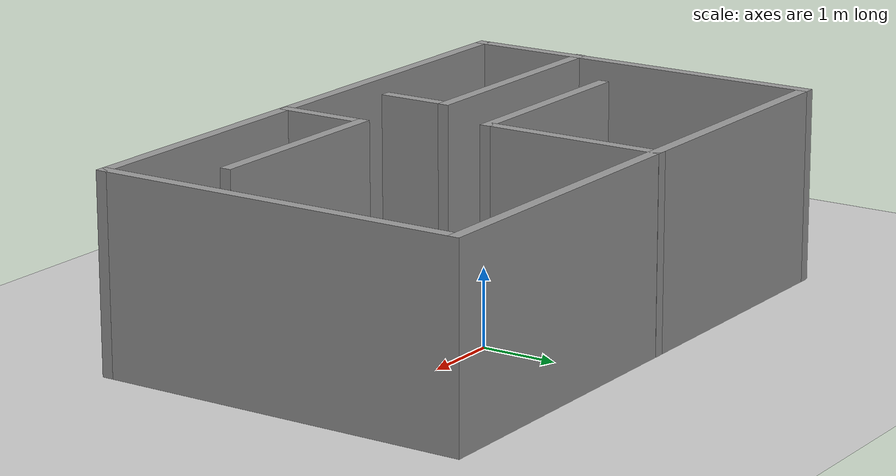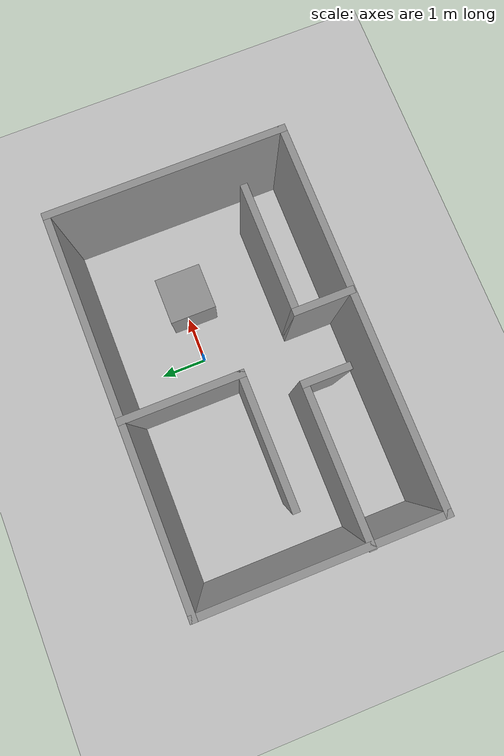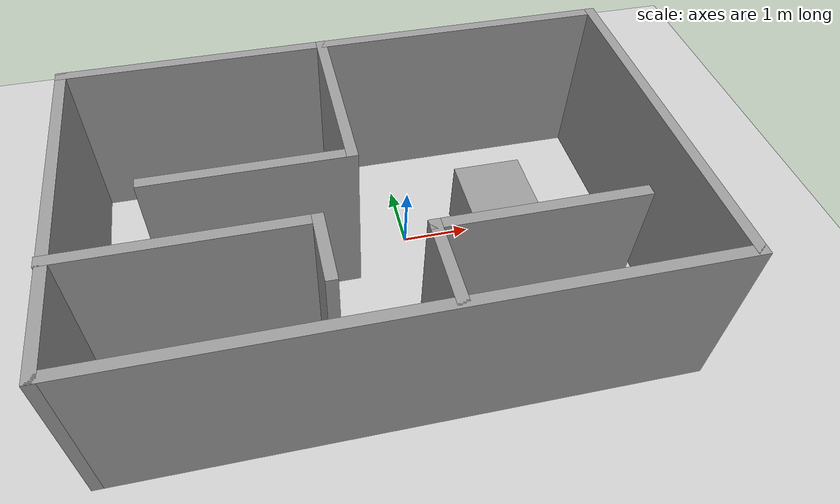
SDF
<sdf version="1.7">
 <world name="default">
  <light name="sun" type="directional">
   <pose>0 0 10 0 -0 0</pose>
   <diffuse>0.8 0.8 0.8 1</diffuse>
   <specular>0.2 0.2 0.2 1</specular>
   <attenuation>
    <range>1000</range>
    <constant>0.9</constant>
    <linear>0.01</linear>
    <quadratic>0.001</quadratic>
   </attenuation>
   <direction>-0.5 0.1 -0.9</direction>
   <spot><inner_angle>0</inner_angle><outer_angle>0</outer_angle><falloff>0</falloff></spot>
  </light>
  <model name="ground_plane">
   <static>1</static>
   <link name="link">
    <collision name="collision">
     <geometry><plane><normal>0 0 1</normal><size>100 100</size></plane></geometry>
     <surface><friction><ode><mu>100</mu><mu2>50</mu2></ode></friction></surface>
    </collision>
    <visual name="visual">
     <cast_shadows>0</cast_shadows>
     <geometry><plane><normal>0 0 1</normal><size>100 100</size></plane></geometry>
     <material>
      <script><uri>file://media/materials/scripts/gazebo.material</uri><name>Gazebo/Grey</name></script>
     </material>
    </visual>
   </link>
  </model>
  <gravity>0 0 -9.8</gravity>
  <magnetic_field>6e-06 2.3e-05 -4.2e-05</magnetic_field>
  <atmosphere type="adiabatic"/>
  <physics type="ode">
   <max_step_size>0.001</max_step_size>
   <real_time_factor>1</real_time_factor>
   <real_time_update_rate>1000</real_time_update_rate>
  </physics>
  <scene><ambient>0.4 0.4 0.4 1</ambient><background>0.7 0.7 0.7 1</background><shadows>1</shadows></scene>
  <audio><device>default</device></audio>
  <spherical_coordinates>
   <surface_model>EARTH_WGS84</surface_model>
   <latitude_deg>0</latitude_deg>
   <longitude_deg>0</longitude_deg>
   <elevation>0</elevation>
   <heading_deg>0</heading_deg>
  </spherical_coordinates>
  <model name="room">
   <pose>-0.648796 0.143638 0 0 -0 0</pose>
   <link name="Wall_15">
    <collision name="Wall_15_Collision">
     <geometry><box><size>2.5 0.15 2.5</size></box></geometry>
     <pose>0 0 1.25 0 -0 0</pose>
    </collision>
    <visual name="Wall_15_Visual">
     <pose>0 0 1.25 0 -0 0</pose>
     <geometry><box><size>2.5 0.15 2.5</size></box></geometry>
     <material>
      <script><uri>file://media/materials/scripts/gazebo.material</uri><name>Gazebo/Grey</name></script>
      <ambient>1 1 1 1</ambient>
     </material>
     <meta><layer>0</layer></meta>
    </visual>
    <pose>-0.246564 0.509318 0 0 -0 -1.5708</pose>
   </link>
   <link name="Wall_16">
    <collision name="Wall_16_Collision">
     <geometry><box><size>2.75 0.15 2.5</size></box></geometry>
     <pose>0 0 1.25 0 -0 0</pose>
    </collision>
    <visual name="Wall_16_Visual">
     <pose>0 0 1.25 0 -0 0</pose>
     <geometry><box><size>2.75 0.15 2.5</size></box></geometry>
     <material>
      <script><uri>file://media/materials/scripts/gazebo.material</uri><name>Gazebo/Grey</name></script>
      <ambient>1 1 1 1</ambient>
     </material>
     <meta><layer>0</layer></meta>
    </visual>
    <pose>-1.54656 -0.665682 0 0 -0 3.14159</pose>
   </link>
   <link name="Wall_18">
    <collision name="Wall_18_Collision">
     <geometry><box><size>3.25 0.15 2.5</size></box></geometry>
     <pose>0 0 1.25 0 -0 0</pose>
    </collision>
    <visual name="Wall_18_Visual">
     <pose>0 0 1.25 0 -0 0</pose>
     <geometry><box><size>3.25 0.15 2.5</size></box></geometry>
     <material>
      <script><uri>file://media/materials/scripts/gazebo.material</uri><name>Gazebo/Grey</name></script>
      <ambient>1 1 1 1</ambient>
     </material>
     <meta><layer>0</layer></meta>
    </visual>
    <pose>-2.38386 -1.67827 0 0 -0 0</pose>
   </link>
   <link name="Wall_19">
    <collision name="Wall_19_Collision">
     <geometry><box><size>1 0.15 2.5</size></box></geometry>
     <pose>0 0 1.25 0 -0 0</pose>
    </collision>
    <visual name="Wall_19_Visual">
     <pose>0 0 1.25 0 -0 0</pose>
     <geometry><box><size>1 0.15 2.5</size></box></geometry>
     <material>
      <script><uri>file://media/materials/scripts/gazebo.material</uri><name>Gazebo/Grey</name></script>
      <ambient>1 1 1 1</ambient>
     </material>
     <meta><layer>0</layer></meta>
    </visual>
    <pose>-0.833864 -2.10328 0 0 -0 -1.5708</pose>
   </link>
   <link name="Wall_2">
    <collision name="Wall_2_Collision">
     <geometry><box><size>8 0.15 2.5</size></box></geometry>
     <pose>0 0 1.25 0 -0 0</pose>
    </collision>
    <visual name="Wall_2_Visual">
     <pose>0 0 1.25 0 -0 0</pose>
     <geometry><box><size>8 0.15 2.5</size></box></geometry>
     <material>
      <script><uri>file://media/materials/scripts/gazebo.material</uri><name>Gazebo/Grey</name></script>
      <ambient>1 1 1 1</ambient>
     </material>
     <meta><layer>0</layer></meta>
    </visual>
    <pose>0.008864 1.6825 0 0 -0 0</pose>
   </link>
   <link name="Wall_21">
    <collision name="Wall_21_Collision">
     <geometry><box><size>1.25 0.15 2.5</size></box></geometry>
     <pose>0 0 1.25 0 -0 0</pose>
    </collision>
    <visual name="Wall_21_Visual">
     <pose>0 0 1.25 0 -0 0</pose>
     <geometry><box><size>1.25 0.15 2.5</size></box></geometry>
     <material>
      <script><uri>file://media/materials/scripts/gazebo.material</uri><name>Gazebo/Grey</name></script>
      <ambient>1 1 1 1</ambient>
     </material>
     <meta><layer>0</layer></meta>
    </visual>
    <pose>0.471008 -2.59657 0 0 -0 1.5708</pose>
   </link>
   <link name="Wall_22">
    <collision name="Wall_22_Collision">
     <geometry><box><size>2.75 0.15 2.5</size></box></geometry>
     <pose>0 0 1.25 0 -0 0</pose>
    </collision>
    <visual name="Wall_22_Visual">
     <pose>0 0 1.25 0 -0 0</pose>
     <geometry><box><size>2.75 0.15 2.5</size></box></geometry>
     <material>
      <script><uri>file://media/materials/scripts/gazebo.material</uri><name>Gazebo/Grey</name></script>
      <ambient>1 1 1 1</ambient>
     </material>
     <meta><layer>0</layer></meta>
    </visual>
    <pose>1.77101 -2.04657 0 0 -0 0</pose>
   </link>
   <link name="Wall_3">
    <collision name="Wall_3_Collision">
     <geometry><box><size>5 0.15 2.5</size></box></geometry>
     <pose>0 0 1.25 0 -0 0</pose>
    </collision>
    <visual name="Wall_3_Visual">
     <pose>0 0 1.25 0 -0 0</pose>
     <geometry><box><size>5 0.15 2.5</size></box></geometry>
     <material>
      <script><uri>file://media/materials/scripts/gazebo.material</uri><name>Gazebo/Grey</name></script>
      <ambient>1 1 1 1</ambient>
     </material>
     <meta><layer>0</layer></meta>
    </visual>
    <pose>3.93386 -0.7425 0 0 -0 -1.5708</pose>
   </link>
   <link name="Wall_4">
    <collision name="Wall_4_Collision">
     <geometry><box><size>8 0.15 2.5</size></box></geometry>
     <pose>0 0 1.25 0 -0 0</pose>
    </collision>
    <visual name="Wall_4_Visual">
     <pose>0 0 1.25 0 -0 0</pose>
     <geometry><box><size>8 0.15 2.5</size></box></geometry>
     <material>
      <script><uri>file://media/materials/scripts/gazebo.material</uri><name>Gazebo/Grey</name></script>
      <ambient>1 1 1 1</ambient>
     </material>
     <meta><layer>0</layer></meta>
    </visual>
    <pose>0.008864 -3.1675 0 0 -0 3.14159</pose>
   </link>
   <link name="Wall_5">
    <collision name="Wall_5_Collision">
     <geometry><box><size>5 0.15 2.5</size></box></geometry>
     <pose>0 0 1.25 0 -0 0</pose>
    </collision>
    <visual name="Wall_5_Visual">
     <pose>0 0 1.25 0 -0 0</pose>
     <geometry><box><size>5 0.15 2.5</size></box></geometry>
     <material>
      <script><uri>file://media/materials/scripts/gazebo.material</uri><name>Gazebo/Grey</name></script>
      <ambient>1 1 1 1</ambient>
     </material>
     <meta><layer>0</layer></meta>
    </visual>
    <pose>-3.91614 -0.7425 0 0 -0 1.5708</pose>
   </link>
   <static>1</static>
  </model>
  <model name="unit_box">
   <pose>1.32546 -0.118564 0.499995 0 -1e-05 0</pose>
   <link name="link">
    <inertial>
     <mass>1</mass>
     <inertia>
      <ixx>0.166667</ixx>
      <ixy>0</ixy>
      <ixz>0</ixz>
      <iyy>0.166667</iyy>
      <iyz>0</iyz>
      <izz>0.166667</izz>
     </inertia>
    </inertial>
    <collision name="collision"><geometry><box><size>1 1 1</size></box></geometry></collision>
    <visual name="visual">
     <geometry><box><size>1 1 1</size></box></geometry>
     <material>
      <script><name>Gazebo/Grey</name><uri>file://media/materials/scripts/gazebo.material</uri></script>
     </material>
    </visual>
   </link>
  </model>
 </world>
</sdf>
